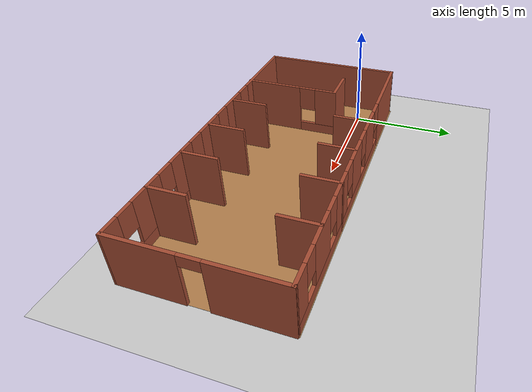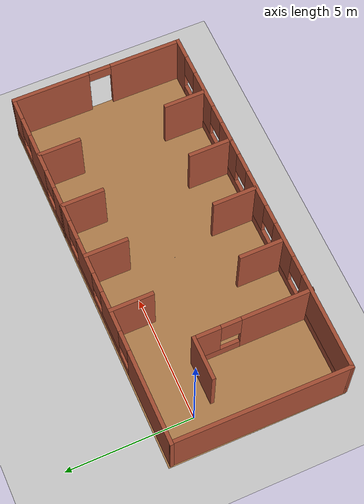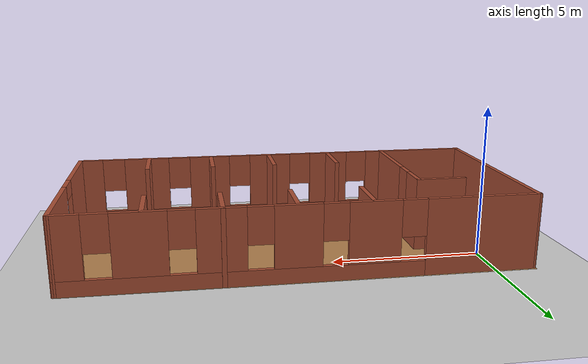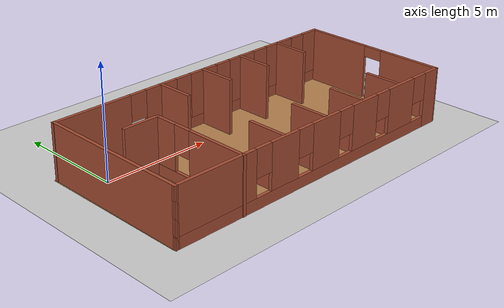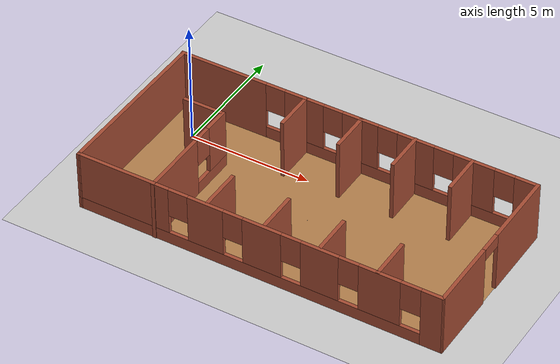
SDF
<sdf version="1.7">
 <world name="default">
  <light name="sun" type="directional">
   <pose>0 0 10 0 -0 0</pose>
   <diffuse>0.8 0.8 0.8 1</diffuse>
   <specular>0.2 0.2 0.2 1</specular>
   <attenuation>
    <range>1000</range>
    <constant>0.9</constant>
    <linear>0.01</linear>
    <quadratic>0.001</quadratic>
   </attenuation>
   <direction>-0.5 0.1 -0.9</direction>
   <spot><inner_angle>0</inner_angle><outer_angle>0</outer_angle><falloff>0</falloff></spot>
  </light>
  <model name="ground_plane">
   <static>1</static>
   <link name="link">
    <collision name="collision">
     <geometry><plane><normal>0 0 1</normal><size>100 100</size></plane></geometry>
     <surface><friction><ode><mu>100</mu><mu2>50</mu2></ode></friction></surface>
    </collision>
    <visual name="visual">
     <cast_shadows>0</cast_shadows>
     <geometry><plane><normal>0 0 1</normal><size>100 100</size></plane></geometry>
     <material>
      <script><uri>file://media/materials/scripts/gazebo.material</uri><name>Gazebo/Grey</name></script>
     </material>
    </visual>
   </link>
  </model>
  <gravity>0 0 -9.8</gravity>
  <magnetic_field>6e-06 2.3e-05 -4.2e-05</magnetic_field>
  <atmosphere type="adiabatic"/>
  <physics type="ode">
   <max_step_size>0.001</max_step_size>
   <real_time_factor>1</real_time_factor>
   <real_time_update_rate>1000</real_time_update_rate>
  </physics>
  <scene><ambient>0.4 0.4 0.4 1</ambient><background>0.7 0.7 0.7 1</background><shadows>1</shadows></scene>
  <spherical_coordinates>
   <surface_model>EARTH_WGS84</surface_model>
   <latitude_deg>0</latitude_deg>
   <longitude_deg>0</longitude_deg>
   <elevation>0</elevation>
   <heading_deg>0</heading_deg>
  </spherical_coordinates>
  <model name="canteen_layout">
   <pose>6.17099 -2.34891 0 0 0 -3.13924</pose>
   <link name="Wall_0">
    <pose>0.020114 3.04338 0 0 -0 0</pose>
    <visual name="Wall_0_Visual_0">
     <pose>-7.0539 0 1.25 0 -0 0</pose>
     <geometry><box><size>0.892191 0.15 2.5</size></box></geometry>
     <material>
      <script><uri>file://media/materials/scripts/gazebo.material</uri><name>Gazebo/Bricks</name></script>
      <ambient>1 1 1 1</ambient>
     </material>
     <meta><layer>0</layer></meta>
    </visual>
    <collision name="Wall_0_Collision_0">
     <geometry><box><size>0.892191 0.15 2.5</size></box></geometry>
     <pose>-7.0539 0 1.25 0 -0 0</pose>
    </collision>
    <visual name="Wall_0_Visual_1">
     <pose>0.446096 0 0.25 0 -0 0</pose>
     <geometry><box><size>14.1078 0.15 0.5</size></box></geometry>
     <material>
      <script><uri>file://media/materials/scripts/gazebo.material</uri><name>Gazebo/Bricks</name></script>
      <ambient>1 1 1 1</ambient>
     </material>
     <meta><layer>0</layer></meta>
    </visual>
    <collision name="Wall_0_Collision_1">
     <geometry><box><size>14.1078 0.15 0.5</size></box></geometry>
     <pose>0.446096 0 0.25 0 -0 0</pose>
    </collision>
    <visual name="Wall_0_Visual_2">
     <pose>-4.98088 0 1.5 0 -0 0</pose>
     <geometry><box><size>1.65386 0.15 2</size></box></geometry>
     <material>
      <script><uri>file://media/materials/scripts/gazebo.material</uri><name>Gazebo/Bricks</name></script>
      <ambient>1 1 1 1</ambient>
     </material>
     <meta><layer>0</layer></meta>
    </visual>
    <collision name="Wall_0_Collision_2">
     <geometry><box><size>1.65386 0.15 2</size></box></geometry>
     <pose>-4.98088 0 1.5 0 -0 0</pose>
    </collision>
    <visual name="Wall_0_Visual_3">
     <pose>-2.59742 0 1.5 0 -0 0</pose>
     <geometry><box><size>1.51306 0.15 2</size></box></geometry>
     <material>
      <script><uri>file://media/materials/scripts/gazebo.material</uri><name>Gazebo/Bricks</name></script>
      <ambient>1 1 1 1</ambient>
     </material>
     <meta><layer>0</layer></meta>
    </visual>
    <collision name="Wall_0_Collision_3">
     <geometry><box><size>1.51306 0.15 2</size></box></geometry>
     <pose>-2.59742 0 1.5 0 -0 0</pose>
    </collision>
    <visual name="Wall_0_Visual_4">
     <pose>-0.254192 0 1.5 0 -0 0</pose>
     <geometry><box><size>1.5734 0.15 2</size></box></geometry>
     <material>
      <script><uri>file://media/materials/scripts/gazebo.material</uri><name>Gazebo/Bricks</name></script>
      <ambient>1 1 1 1</ambient>
     </material>
     <meta><layer>0</layer></meta>
    </visual>
    <collision name="Wall_0_Collision_4">
     <geometry><box><size>1.5734 0.15 2</size></box></geometry>
     <pose>-0.254192 0 1.5 0 -0 0</pose>
    </collision>
    <visual name="Wall_0_Visual_5">
     <pose>2.06893 0 1.5 0 -0 0</pose>
     <geometry><box><size>1.47283 0.15 2</size></box></geometry>
     <material>
      <script><uri>file://media/materials/scripts/gazebo.material</uri><name>Gazebo/Bricks</name></script>
      <ambient>1 1 1 1</ambient>
     </material>
     <meta><layer>0</layer></meta>
    </visual>
    <collision name="Wall_0_Collision_5">
     <geometry><box><size>1.47283 0.15 2</size></box></geometry>
     <pose>2.06893 0 1.5 0 -0 0</pose>
    </collision>
    <visual name="Wall_0_Visual_6">
     <pose>5.55267 0 1.5 0 -0 0</pose>
     <geometry><box><size>3.89466 0.15 2</size></box></geometry>
     <material>
      <script><uri>file://media/materials/scripts/gazebo.material</uri><name>Gazebo/Bricks</name></script>
      <ambient>1 1 1 1</ambient>
     </material>
     <meta><layer>0</layer></meta>
    </visual>
    <collision name="Wall_0_Collision_6">
     <geometry><box><size>3.89466 0.15 2</size></box></geometry>
     <pose>5.55267 0 1.5 0 -0 0</pose>
    </collision>
    <visual name="Wall_0_Visual_7">
     <pose>-6.20781 0 1.9 0 -0 0</pose>
     <geometry><box><size>0.8 0.15 1.2</size></box></geometry>
     <material>
      <script><uri>file://media/materials/scripts/gazebo.material</uri><name>Gazebo/Bricks</name></script>
      <ambient>1 1 1 1</ambient>
     </material>
     <meta><layer>0</layer></meta>
    </visual>
    <collision name="Wall_0_Collision_7">
     <geometry><box><size>0.8 0.15 1.2</size></box></geometry>
     <pose>-6.20781 0 1.9 0 -0 0</pose>
    </collision>
    <visual name="Wall_0_Visual_8">
     <pose>-3.75395 0 1.9 0 -0 0</pose>
     <geometry><box><size>0.8 0.15 1.2</size></box></geometry>
     <material>
      <script><uri>file://media/materials/scripts/gazebo.material</uri><name>Gazebo/Bricks</name></script>
      <ambient>1 1 1 1</ambient>
     </material>
     <meta><layer>0</layer></meta>
    </visual>
    <collision name="Wall_0_Collision_8">
     <geometry><box><size>0.8 0.15 1.2</size></box></geometry>
     <pose>-3.75395 0 1.9 0 -0 0</pose>
    </collision>
    <visual name="Wall_0_Visual_9">
     <pose>-1.44089 0 1.9 0 -0 0</pose>
     <geometry><box><size>0.8 0.15 1.2</size></box></geometry>
     <material>
      <script><uri>file://media/materials/scripts/gazebo.material</uri><name>Gazebo/Bricks</name></script>
      <ambient>1 1 1 1</ambient>
     </material>
     <meta><layer>0</layer></meta>
    </visual>
    <collision name="Wall_0_Collision_9">
     <geometry><box><size>0.8 0.15 1.2</size></box></geometry>
     <pose>-1.44089 0 1.9 0 -0 0</pose>
    </collision>
    <visual name="Wall_0_Visual_10">
     <pose>0.932509 0 1.9 0 -0 0</pose>
     <geometry><box><size>0.8 0.15 1.2</size></box></geometry>
     <material>
      <script><uri>file://media/materials/scripts/gazebo.material</uri><name>Gazebo/Bricks</name></script>
      <ambient>1 1 1 1</ambient>
     </material>
     <meta><layer>0</layer></meta>
    </visual>
    <collision name="Wall_0_Collision_10">
     <geometry><box><size>0.8 0.15 1.2</size></box></geometry>
     <pose>0.932509 0 1.9 0 -0 0</pose>
    </collision>
    <visual name="Wall_0_Visual_11">
     <pose>3.20534 0 1.9 0 -0 0</pose>
     <geometry><box><size>0.8 0.15 1.2</size></box></geometry>
     <material>
      <script><uri>file://media/materials/scripts/gazebo.material</uri><name>Gazebo/Bricks</name></script>
      <ambient>1 1 1 1</ambient>
     </material>
     <meta><layer>0</layer></meta>
    </visual>
    <collision name="Wall_0_Collision_11">
     <geometry><box><size>0.8 0.15 1.2</size></box></geometry>
     <pose>3.20534 0 1.9 0 -0 0</pose>
    </collision>
   </link>
   <link name="Wall_18">
    <pose>4.25828 0.767842 0 0 -0 -1.5708</pose>
    <visual name="Wall_18_Visual_0">
     <pose>-0.954456 0 1.25 0 -0 0</pose>
     <geometry><box><size>2.84109 0.15 2.5</size></box></geometry>
     <material>
      <script><uri>file://media/materials/scripts/gazebo.material</uri><name>Gazebo/Bricks</name></script>
      <ambient>1 1 1 1</ambient>
     </material>
     <meta><layer>0</layer></meta>
    </visual>
    <collision name="Wall_18_Collision_0">
     <geometry><box><size>2.84109 0.15 2.5</size></box></geometry>
     <pose>-0.954456 0 1.25 0 -0 0</pose>
    </collision>
    <visual name="Wall_18_Visual_1">
     <pose>1.42054 0 0.25 0 -0 0</pose>
     <geometry><box><size>1.90891 0.15 0.5</size></box></geometry>
     <material>
      <script><uri>file://media/materials/scripts/gazebo.material</uri><name>Gazebo/Bricks</name></script>
      <ambient>1 1 1 1</ambient>
     </material>
     <meta><layer>0</layer></meta>
    </visual>
    <collision name="Wall_18_Collision_1">
     <geometry><box><size>1.90891 0.15 0.5</size></box></geometry>
     <pose>1.42054 0 0.25 0 -0 0</pose>
    </collision>
    <visual name="Wall_18_Visual_2">
     <pose>1.82054 0 1.5 0 -0 0</pose>
     <geometry><box><size>1.10891 0.15 2</size></box></geometry>
     <material>
      <script><uri>file://media/materials/scripts/gazebo.material</uri><name>Gazebo/Bricks</name></script>
      <ambient>1 1 1 1</ambient>
     </material>
     <meta><layer>0</layer></meta>
    </visual>
    <collision name="Wall_18_Collision_2">
     <geometry><box><size>1.10891 0.15 2</size></box></geometry>
     <pose>1.82054 0 1.5 0 -0 0</pose>
    </collision>
    <visual name="Wall_18_Visual_3">
     <pose>0.866087 0 1.9 0 -0 0</pose>
     <geometry><box><size>0.8 0.15 1.2</size></box></geometry>
     <material>
      <script><uri>file://media/materials/scripts/gazebo.material</uri><name>Gazebo/Bricks</name></script>
      <ambient>1 1 1 1</ambient>
     </material>
     <meta><layer>0</layer></meta>
    </visual>
    <collision name="Wall_18_Collision_3">
     <geometry><box><size>0.8 0.15 1.2</size></box></geometry>
     <pose>0.866087 0 1.9 0 -0 0</pose>
    </collision>
   </link>
   <link name="Wall_19">
    <collision name="Wall_19_Collision">
     <geometry><box><size>1.75 0.15 2.5</size></box></geometry>
     <pose>0 0 1.25 0 -0 0</pose>
    </collision>
    <visual name="Wall_19_Visual">
     <pose>0 0 1.25 0 -0 0</pose>
     <geometry><box><size>1.75 0.15 2.5</size></box></geometry>
     <material>
      <script><uri>file://media/materials/scripts/gazebo.material</uri><name>Gazebo/Bricks</name></script>
      <ambient>1 1 1 1</ambient>
     </material>
     <meta><layer>0</layer></meta>
    </visual>
    <pose>5.05828 -1.53216 0 0 -0 0</pose>
   </link>
   <link name="Wall_2">
    <collision name="Wall_2_Collision">
     <geometry><box><size>7 0.15 2.5</size></box></geometry>
     <pose>0 0 1.25 0 -0 0</pose>
    </collision>
    <visual name="Wall_2_Visual">
     <pose>0 0 1.25 0 -0 0</pose>
     <geometry><box><size>7 0.15 2.5</size></box></geometry>
     <material>
      <script><uri>file://media/materials/scripts/gazebo.material</uri><name>Gazebo/Bricks</name></script>
      <ambient>1 1 1 1</ambient>
     </material>
     <meta><layer>0</layer></meta>
    </visual>
    <pose>7.425 -0.381624 0 0 -0 -1.57667</pose>
   </link>
   <link name="Wall_21">
    <collision name="Wall_21_Collision">
     <geometry><box><size>1.75 0.15 2.5</size></box></geometry>
     <pose>0 0 1.25 0 -0 0</pose>
    </collision>
    <visual name="Wall_21_Visual">
     <pose>0 0 1.25 0 -0 0</pose>
     <geometry><box><size>1.75 0.15 2.5</size></box></geometry>
     <material>
      <script><uri>file://media/materials/scripts/gazebo.material</uri><name>Gazebo/Bricks</name></script>
      <ambient>1 1 1 1</ambient>
     </material>
     <meta><layer>0</layer></meta>
    </visual>
    <pose>-4.87017 2.21311 0 0 -0 -1.5708</pose>
   </link>
   <link name="Wall_23">
    <collision name="Wall_23_Collision">
     <geometry><box><size>1.75 0.15 2.5</size></box></geometry>
     <pose>0 0 1.25 0 -0 0</pose>
    </collision>
    <visual name="Wall_23_Visual">
     <pose>0 0 1.25 0 -0 0</pose>
     <geometry><box><size>1.75 0.15 2.5</size></box></geometry>
     <material>
      <script><uri>file://media/materials/scripts/gazebo.material</uri><name>Gazebo/Bricks</name></script>
      <ambient>1 1 1 1</ambient>
     </material>
     <meta><layer>0</layer></meta>
    </visual>
    <pose>-2.52802 2.1979 0 0 -0 -1.5708</pose>
   </link>
   <link name="Wall_25">
    <collision name="Wall_25_Collision">
     <geometry><box><size>1.75 0.15 2.5</size></box></geometry>
     <pose>0 0 1.25 0 -0 0</pose>
    </collision>
    <visual name="Wall_25_Visual">
     <pose>0 0 1.25 0 -0 0</pose>
     <geometry><box><size>1.75 0.15 2.5</size></box></geometry>
     <material>
      <script><uri>file://media/materials/scripts/gazebo.material</uri><name>Gazebo/Bricks</name></script>
      <ambient>1 1 1 1</ambient>
     </material>
     <meta><layer>0</layer></meta>
    </visual>
    <pose>-0.277126 2.15228 0 0 -0 -1.5708</pose>
   </link>
   <link name="Wall_27">
    <collision name="Wall_27_Collision">
     <geometry><box><size>1.75 0.15 2.5</size></box></geometry>
     <pose>0 0 1.25 0 -0 0</pose>
    </collision>
    <visual name="Wall_27_Visual">
     <pose>0 0 1.25 0 -0 0</pose>
     <geometry><box><size>1.75 0.15 2.5</size></box></geometry>
     <material>
      <script><uri>file://media/materials/scripts/gazebo.material</uri><name>Gazebo/Bricks</name></script>
      <ambient>1 1 1 1</ambient>
     </material>
     <meta><layer>0</layer></meta>
    </visual>
    <pose>2.06502 2.12186 0 0 -0 -1.5708</pose>
   </link>
   <link name="Wall_3">
    <pose>0 -3.80662 0 0 -0 3.14159</pose>
    <visual name="Wall_3_Visual_0">
     <pose>-5.63312 0 1.25 0 -0 0</pose>
     <geometry><box><size>3.73375 0.15 2.5</size></box></geometry>
     <material>
      <script><uri>file://media/materials/scripts/gazebo.material</uri><name>Gazebo/Bricks</name></script>
      <ambient>1 1 1 1</ambient>
     </material>
     <meta><layer>0</layer></meta>
    </visual>
    <collision name="Wall_3_Collision_0">
     <geometry><box><size>3.73375 0.15 2.5</size></box></geometry>
     <pose>-5.63312 0 1.25 0 -0 0</pose>
    </collision>
    <visual name="Wall_3_Visual_1">
     <pose>1.86688 0 0.25 0 -0 0</pose>
     <geometry><box><size>11.2663 0.15 0.5</size></box></geometry>
     <material>
      <script><uri>file://media/materials/scripts/gazebo.material</uri><name>Gazebo/Bricks</name></script>
      <ambient>1 1 1 1</ambient>
     </material>
     <meta><layer>0</layer></meta>
    </visual>
    <collision name="Wall_3_Collision_1">
     <geometry><box><size>11.2663 0.15 0.5</size></box></geometry>
     <pose>1.86688 0 0.25 0 -0 0</pose>
    </collision>
    <visual name="Wall_3_Visual_2">
     <pose>-2.13932 0 1.5 0 -0 0</pose>
     <geometry><box><size>1.65386 0.15 2</size></box></geometry>
     <material>
      <script><uri>file://media/materials/scripts/gazebo.material</uri><name>Gazebo/Bricks</name></script>
      <ambient>1 1 1 1</ambient>
     </material>
     <meta><layer>0</layer></meta>
    </visual>
    <collision name="Wall_3_Collision_2">
     <geometry><box><size>1.65386 0.15 2</size></box></geometry>
     <pose>-2.13932 0 1.5 0 -0 0</pose>
    </collision>
    <visual name="Wall_3_Visual_3">
     <pose>0.234078 0 1.5 0 -0 0</pose>
     <geometry><box><size>1.49295 0.15 2</size></box></geometry>
     <material>
      <script><uri>file://media/materials/scripts/gazebo.material</uri><name>Gazebo/Bricks</name></script>
      <ambient>1 1 1 1</ambient>
     </material>
     <meta><layer>0</layer></meta>
    </visual>
    <collision name="Wall_3_Collision_3">
     <geometry><box><size>1.49295 0.15 2</size></box></geometry>
     <pose>0.234078 0 1.5 0 -0 0</pose>
    </collision>
    <visual name="Wall_3_Visual_4">
     <pose>2.53708 0 1.5 0 -0 0</pose>
     <geometry><box><size>1.51306 0.15 2</size></box></geometry>
     <material>
      <script><uri>file://media/materials/scripts/gazebo.material</uri><name>Gazebo/Bricks</name></script>
      <ambient>1 1 1 1</ambient>
     </material>
     <meta><layer>0</layer></meta>
    </visual>
    <collision name="Wall_3_Collision_4">
     <geometry><box><size>1.51306 0.15 2</size></box></geometry>
     <pose>2.53708 0 1.5 0 -0 0</pose>
    </collision>
    <visual name="Wall_3_Visual_5">
     <pose>4.92054 0 1.5 0 -0 0</pose>
     <geometry><box><size>1.65386 0.15 2</size></box></geometry>
     <material>
      <script><uri>file://media/materials/scripts/gazebo.material</uri><name>Gazebo/Bricks</name></script>
      <ambient>1 1 1 1</ambient>
     </material>
     <meta><layer>0</layer></meta>
    </visual>
    <collision name="Wall_3_Collision_5">
     <geometry><box><size>1.65386 0.15 2</size></box></geometry>
     <pose>4.92054 0 1.5 0 -0 0</pose>
    </collision>
    <visual name="Wall_3_Visual_6">
     <pose>7.02373 0 1.5 0 -0 0</pose>
     <geometry><box><size>0.952532 0.15 2</size></box></geometry>
     <material>
      <script><uri>file://media/materials/scripts/gazebo.material</uri><name>Gazebo/Bricks</name></script>
      <ambient>1 1 1 1</ambient>
     </material>
     <meta><layer>0</layer></meta>
    </visual>
    <collision name="Wall_3_Collision_6">
     <geometry><box><size>0.952532 0.15 2</size></box></geometry>
     <pose>7.02373 0 1.5 0 -0 0</pose>
    </collision>
    <visual name="Wall_3_Visual_7">
     <pose>-3.36625 0 1.9 0 -0 0</pose>
     <geometry><box><size>0.8 0.15 1.2</size></box></geometry>
     <material>
      <script><uri>file://media/materials/scripts/gazebo.material</uri><name>Gazebo/Bricks</name></script>
      <ambient>1 1 1 1</ambient>
     </material>
     <meta><layer>0</layer></meta>
    </visual>
    <collision name="Wall_3_Collision_7">
     <geometry><box><size>0.8 0.15 1.2</size></box></geometry>
     <pose>-3.36625 0 1.9 0 -0 0</pose>
    </collision>
    <visual name="Wall_3_Visual_8">
     <pose>-0.912395 0 1.9 0 -0 0</pose>
     <geometry><box><size>0.8 0.15 1.2</size></box></geometry>
     <material>
      <script><uri>file://media/materials/scripts/gazebo.material</uri><name>Gazebo/Bricks</name></script>
      <ambient>1 1 1 1</ambient>
     </material>
     <meta><layer>0</layer></meta>
    </visual>
    <collision name="Wall_3_Collision_8">
     <geometry><box><size>0.8 0.15 1.2</size></box></geometry>
     <pose>-0.912395 0 1.9 0 -0 0</pose>
    </collision>
    <visual name="Wall_3_Visual_9">
     <pose>1.38055 0 1.9 0 -0 0</pose>
     <geometry><box><size>0.8 0.15 1.2</size></box></geometry>
     <material>
      <script><uri>file://media/materials/scripts/gazebo.material</uri><name>Gazebo/Bricks</name></script>
      <ambient>1 1 1 1</ambient>
     </material>
     <meta><layer>0</layer></meta>
    </visual>
    <collision name="Wall_3_Collision_9">
     <geometry><box><size>0.8 0.15 1.2</size></box></geometry>
     <pose>1.38055 0 1.9 0 -0 0</pose>
    </collision>
    <visual name="Wall_3_Visual_10">
     <pose>3.69361 0 1.9 0 -0 0</pose>
     <geometry><box><size>0.8 0.15 1.2</size></box></geometry>
     <material>
      <script><uri>file://media/materials/scripts/gazebo.material</uri><name>Gazebo/Bricks</name></script>
      <ambient>1 1 1 1</ambient>
     </material>
     <meta><layer>0</layer></meta>
    </visual>
    <collision name="Wall_3_Collision_10">
     <geometry><box><size>0.8 0.15 1.2</size></box></geometry>
     <pose>3.69361 0 1.9 0 -0 0</pose>
    </collision>
    <visual name="Wall_3_Visual_11">
     <pose>6.14747 0 1.9 0 -0 0</pose>
     <geometry><box><size>0.8 0.15 1.2</size></box></geometry>
     <material>
      <script><uri>file://media/materials/scripts/gazebo.material</uri><name>Gazebo/Bricks</name></script>
      <ambient>1 1 1 1</ambient>
     </material>
     <meta><layer>0</layer></meta>
    </visual>
    <collision name="Wall_3_Collision_11">
     <geometry><box><size>0.8 0.15 1.2</size></box></geometry>
     <pose>6.14747 0 1.9 0 -0 0</pose>
    </collision>
   </link>
   <link name="Wall_30">
    <collision name="Wall_30_Collision">
     <geometry><box><size>1.75 0.15 2.5</size></box></geometry>
     <pose>0 0 1.25 0 -0 0</pose>
    </collision>
    <visual name="Wall_30_Visual">
     <pose>0 0 1.25 0 -0 0</pose>
     <geometry><box><size>1.75 0.15 2.5</size></box></geometry>
     <material>
      <script><uri>file://media/materials/scripts/gazebo.material</uri><name>Gazebo/Bricks</name></script>
      <ambient>1 1 1 1</ambient>
     </material>
     <meta><layer>0</layer></meta>
    </visual>
    <pose>-4.82957 -3.00089 0 0 -0 1.5708</pose>
   </link>
   <link name="Wall_32">
    <collision name="Wall_32_Collision">
     <geometry><box><size>1.75 0.15 2.5</size></box></geometry>
     <pose>0 0 1.25 0 -0 0</pose>
    </collision>
    <visual name="Wall_32_Visual">
     <pose>0 0 1.25 0 -0 0</pose>
     <geometry><box><size>1.75 0.15 2.5</size></box></geometry>
     <material>
      <script><uri>file://media/materials/scripts/gazebo.material</uri><name>Gazebo/Bricks</name></script>
      <ambient>1 1 1 1</ambient>
     </material>
     <meta><layer>0</layer></meta>
    </visual>
    <pose>-2.4859 -3.01838 0 0 -0 1.5708</pose>
   </link>
   <link name="Wall_34">
    <collision name="Wall_34_Collision">
     <geometry><box><size>1.75 0.15 2.5</size></box></geometry>
     <pose>0 0 1.25 0 -0 0</pose>
    </collision>
    <visual name="Wall_34_Visual">
     <pose>0 0 1.25 0 -0 0</pose>
     <geometry><box><size>1.75 0.15 2.5</size></box></geometry>
     <material>
      <script><uri>file://media/materials/scripts/gazebo.material</uri><name>Gazebo/Bricks</name></script>
      <ambient>1 1 1 1</ambient>
     </material>
     <meta><layer>0</layer></meta>
    </visual>
    <pose>-0.247169 -3.00089 0 0 -0 1.5708</pose>
   </link>
   <link name="Wall_36">
    <collision name="Wall_36_Collision">
     <geometry><box><size>1.75 0.15 2.5</size></box></geometry>
     <pose>0 0 1.25 0 -0 0</pose>
    </collision>
    <visual name="Wall_36_Visual">
     <pose>0 0 1.25 0 -0 0</pose>
     <geometry><box><size>1.75 0.15 2.5</size></box></geometry>
     <material>
      <script><uri>file://media/materials/scripts/gazebo.material</uri><name>Gazebo/Bricks</name></script>
      <ambient>1 1 1 1</ambient>
     </material>
     <meta><layer>0</layer></meta>
    </visual>
    <pose>2.0965 -3.00089 0 0 -0 1.5708</pose>
   </link>
   <link name="Wall_4">
    <pose>-7.425 -0.381624 0 0 -0 1.56492</pose>
    <visual name="Wall_4_Visual_0">
     <pose>-1.92653 0 1.25 0 -0 0</pose>
     <geometry><box><size>3.14695 0.15 2.5</size></box></geometry>
     <material>
      <script><uri>file://media/materials/scripts/gazebo.material</uri><name>Gazebo/Bricks</name></script>
      <ambient>1 1 1 1</ambient>
     </material>
     <meta><layer>0</layer></meta>
    </visual>
    <collision name="Wall_4_Collision_0">
     <geometry><box><size>3.14695 0.15 2.5</size></box></geometry>
     <pose>-1.92653 0 1.25 0 -0 0</pose>
    </collision>
    <visual name="Wall_4_Visual_1">
     <pose>2.02347 0 1.25 0 -0 0</pose>
     <geometry><box><size>2.95305 0.15 2.5</size></box></geometry>
     <material>
      <script><uri>file://media/materials/scripts/gazebo.material</uri><name>Gazebo/Bricks</name></script>
      <ambient>1 1 1 1</ambient>
     </material>
     <meta><layer>0</layer></meta>
    </visual>
    <collision name="Wall_4_Collision_1">
     <geometry><box><size>2.95305 0.15 2.5</size></box></geometry>
     <pose>2.02347 0 1.25 0 -0 0</pose>
    </collision>
    <visual name="Wall_4_Visual_2">
     <pose>0.096946 0 2.25 0 -0 0</pose>
     <geometry><box><size>0.9 0.15 0.5</size></box></geometry>
     <material>
      <script><uri>file://media/materials/scripts/gazebo.material</uri><name>Gazebo/Bricks</name></script>
      <ambient>1 1 1 1</ambient>
     </material>
     <meta><layer>0</layer></meta>
    </visual>
    <collision name="Wall_4_Collision_2">
     <geometry><box><size>0.9 0.15 0.5</size></box></geometry>
     <pose>0.096946 0 2.25 0 -0 0</pose>
    </collision>
   </link>
   <static>1</static>
  </model>
  <model name="wooden_board">
   <link name="base">
    <pose>-0 -0 0.00523 0 -0 0</pose>
    <inertial>
     <mass>0.2765</mass>
     <inertia>
      <ixx>0.0025148</ixx>
      <ixy>0</ixy>
      <ixz>0</ixz>
      <iyy>0.00024037</iyy>
      <iyz>0</iyz>
      <izz>0.00275013</izz>
     </inertia>
    </inertial>
    <visual name="visual">
     <geometry><box><size>15 7 0.001</size></box></geometry>
     <material>
      <script><uri>file://media/materials/scripts/gazebo.material</uri><name>Gazebo/Wood</name></script>
      <shader type="pixel"><normal_map>__default__</normal_map></shader>
      <ambient>1 1 1 1</ambient>
      <diffuse>1 1 1 1</diffuse>
      <specular>0.2 0.2 0.2 1</specular>
      <emissive>0 0 0 1</emissive>
     </material>
    </visual>
    <visual name="tee_nut_1">
     <pose>0 -0.116 0 0 -0 0</pose>
     <geometry><cylinder><radius>0.00635</radius><length>0.0105646</length></cylinder></geometry>
     <material>
      <script><uri>file://media/materials/scripts/gazebo.material</uri><name>Gazebo/Grey</name></script>
      <shader type="pixel"><normal_map>__default__</normal_map></shader>
      <ambient>0.3 0.3 0.3 1</ambient>
      <diffuse>0.7 0.7 0.7 1</diffuse>
      <specular>0.01 0.01 0.01 1</specular>
      <emissive>0 0 0 1</emissive>
     </material>
    </visual>
    <visual name="tee_nut_2">
     <pose>0 -0.038 0 0 -0 0</pose>
     <geometry><cylinder><radius>0.00635</radius><length>0.0105646</length></cylinder></geometry>
     <material>
      <script><uri>file://media/materials/scripts/gazebo.material</uri><name>Gazebo/Grey</name></script>
      <shader type="pixel"><normal_map>__default__</normal_map></shader>
      <ambient>0.3 0.3 0.3 1</ambient>
      <diffuse>0.7 0.7 0.7 1</diffuse>
      <specular>0.01 0.01 0.01 1</specular>
      <emissive>0 0 0 1</emissive>
     </material>
    </visual>
    <visual name="tee_nut_3">
     <pose>0 0.038 0 0 -0 0</pose>
     <geometry><cylinder><radius>0.00635</radius><length>0.0105646</length></cylinder></geometry>
     <material>
      <script><uri>file://media/materials/scripts/gazebo.material</uri><name>Gazebo/Grey</name></script>
      <shader type="pixel"><normal_map>__default__</normal_map></shader>
      <ambient>0.3 0.3 0.3 1</ambient>
      <diffuse>0.7 0.7 0.7 1</diffuse>
      <specular>0.01 0.01 0.01 1</specular>
      <emissive>0 0 0 1</emissive>
     </material>
    </visual>
    <visual name="tee_nut_4">
     <pose>0 0.116 0 0 -0 0</pose>
     <geometry><cylinder><radius>0.00635</radius><length>0.0105646</length></cylinder></geometry>
     <material>
      <script><uri>file://media/materials/scripts/gazebo.material</uri><name>Gazebo/Grey</name></script>
      <shader type="pixel"><normal_map>__default__</normal_map></shader>
      <ambient>0.3 0.3 0.3 1</ambient>
      <diffuse>0.7 0.7 0.7 1</diffuse>
      <specular>0.01 0.01 0.01 1</specular>
      <emissive>0 0 0 1</emissive>
     </material>
    </visual>
    <collision name="collision">
     <geometry><box><size>0.1016 0.3302 0.01046</size></box></geometry>
     <surface>
      <friction>
       <ode><mu>1</mu><mu2>1</mu2><fdir1>0 0 0</fdir1><slip1>0</slip1><slip2>0</slip2></ode>
       <torsional>
        <coefficient>1</coefficient>
        <patch_radius>0</patch_radius>
        <surface_radius>0.01</surface_radius>
        <use_patch_radius>0</use_patch_radius>
        <ode><slip>0</slip></ode>
       </torsional>
      </friction>
      <bounce><restitution_coefficient>0</restitution_coefficient><threshold>1e+06</threshold></bounce>
      <contact>
       <collide_without_contact>0</collide_without_contact>
       <collide_without_contact_bitmask>1</collide_without_contact_bitmask>
       <collide_bitmask>1</collide_bitmask>
       <ode>
        <soft_cfm>0</soft_cfm>
        <soft_erp>0.2</soft_erp>
        <kp>100000</kp>
        <kd>100</kd>
        <max_vel>100</max_vel>
        <min_depth>0.001</min_depth>
       </ode>
       <bullet>
        <split_impulse>1</split_impulse>
        <split_impulse_penetration_threshold>-0.01</split_impulse_penetration_threshold>
        <soft_cfm>0</soft_cfm>
        <soft_erp>0.2</soft_erp>
        <kp>100000</kp>
        <kd>100</kd>
       </bullet>
      </contact>
     </surface>
    </collision>
   </link>
   <static>0</static>
   <pose>6.13413 -1.92 -0.001007 0 -0 0</pose>
  </model>
 </world>
</sdf>
